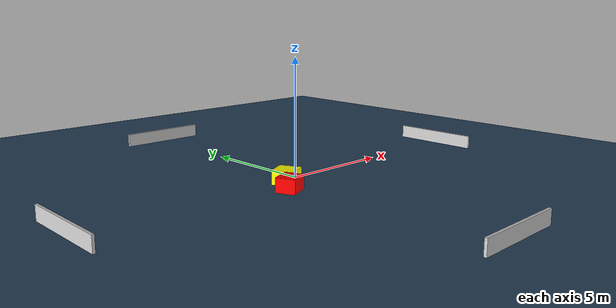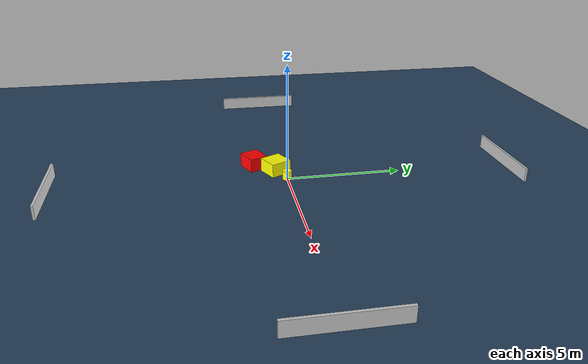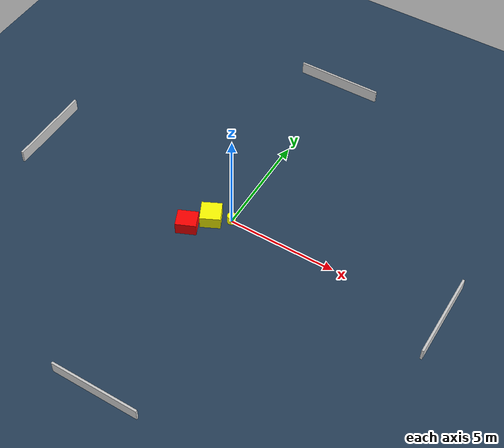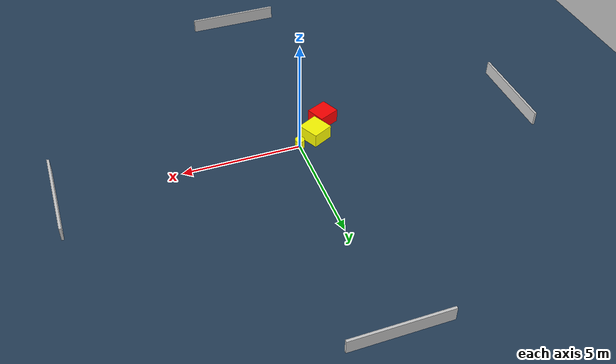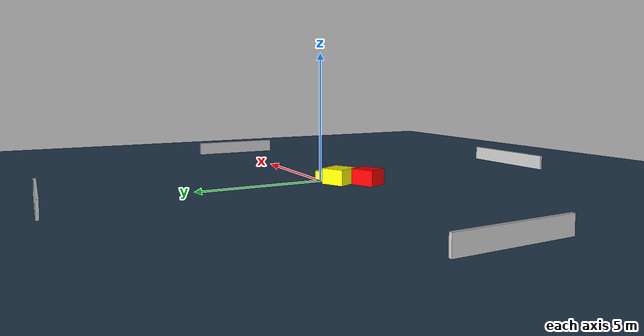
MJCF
<?xml version="1.0" ?>
<mujoco model="generated_environment">
  <option timestep="0.01" integrator="RK4" cone="elliptic"/>
  <default>
    <geom density="1"/>
  </default>
  <asset>
    <texture builtin="gradient" height="3072" name="skybox" rgb1="0.3 0.5 0.7" rgb2="0 0 0" type="skybox" width="512"/>
    <texture builtin="checker" height="300" name="groundplane" rgb1="0.2 0.3 0.4" rgb2="0.1 0.2 0.3" type="2d" width="300"/>
    <material name="groundplane" reflectance="0.2" texrepeat="5 5" texture="groundplane"/>
  </asset>
  <worldbody>
    <light dir="0 0 -1" directional="true" pos="0 0 1.5"/>
    <geom condim="3" friction="0.5 0.005 0.001" material="groundplane" name="floor" pos="0 0 0" size="0 0 0.05" type="plane"/>
    <body name="walls">
      <geom name="wall_1" condim="4" pos="-10.0 0.0 0.3" rgba="0.800000011920929 0.800000011920929 0.800000011920929 1.0" size="0.05 2.0 0.3" type="box"/>
      <geom name="wall_2" condim="4" pos="10.0 0.0 0.3" rgba="0.800000011920929 0.800000011920929 0.800000011920929 1.0" size="0.05 2.0 0.3" type="box"/>
      <geom name="wall_3" condim="4" pos="0.0 -10.0 0.3" rgba="0.800000011920929 0.800000011920929 0.800000011920929 1.0" size="2.0 0.05 0.3" type="box"/>
      <geom name="wall_4" condim="4" pos="0.0 10.0 0.3" rgba="0.800000011920929 0.800000011920929 0.800000011920929 1.0" size="2.0 0.05 0.3" type="box"/>
    </body>
    <body name="robot">
      <joint name="joint_x" type="slide" pos="0 0 0" axis="1 0 0"/>
      <joint name="joint_y" type="slide" pos="0 0 0" axis="0 1 0"/>
      <geom name="robot" type="cylinder" pos="0.0 0.0 0.2" size="0.2 0.2 0.0" mass="5.0" friction="1.0 0.005 0.0001" condim="4" rgba="1.0 1.0 0.0 1.0"/>
    </body>
    <body name="obstacle_1_movable">
      <geom name="obstacle_1_movable" condim="4" pos="-0.8225837418213066 -0.3763315632087855 0.3" euler="0 0 116.36575211530638" friction="0.0 0.005 0.001" rgba="1.0 1.0 0.0 1.0" size="0.47119004380740687 0.4615001339924584 0.3" type="box" mass="0.1"/>
      <joint type="free"/>
    </body>
    <body name="obstacle_2_static">
      <geom name="obstacle_2_static" condim="4" pos="-1.4953318746939859 -1.2624464688959562 0.3" euler="0 0 113.72030648350781" friction="0.0 0.005 0.001" rgba="1.0 0.0 0.0 1.0" size="0.41326877604376955 0.46440614095955257 0.3" type="box"/>
    </body>
  </worldbody>
  <actuator>
    <motor name="actuator_x" joint="joint_x" gear="1" ctrlrange="-1 1"/>
    <motor name="actuator_y" joint="joint_y" gear="1" ctrlrange="-1 1"/>
  </actuator>
</mujoco>
